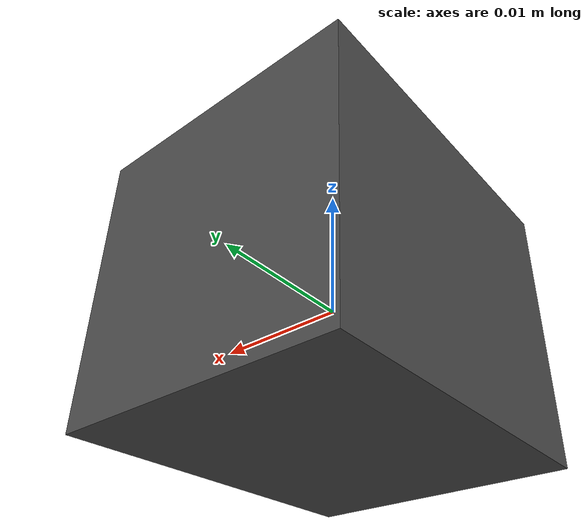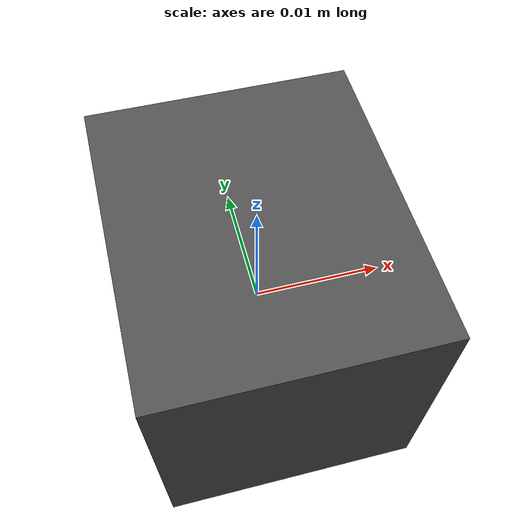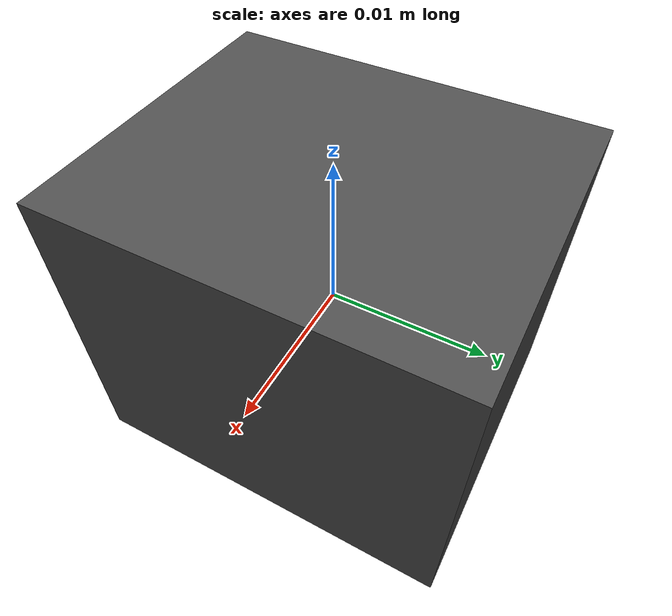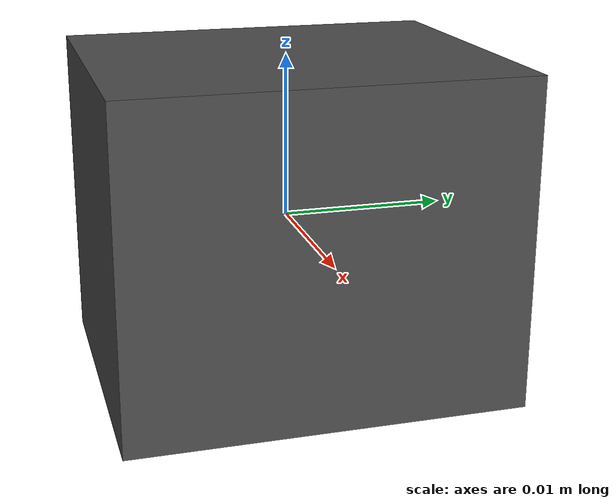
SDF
<?xml version="1.0" ?>
<sdf version="1.5">
  <model name="camera_down">
    <pose>0 0 0.0 0 0 0</pose>
    <link name='link'>
      <inertial>
        <mass>0.01</mass>
        <inertia>
          <ixx>4.15e-06</ixx>
          <ixy>0</ixy>
          <ixz>0</ixz>
          <iyy>2.407e-06</iyy>
          <iyz>0</iyz>
          <izz>2.407e-06</izz>
        </inertia>
      </inertial>
      <self_collide>0</self_collide>
      <kinematic>0</kinematic>
      <sensor name='camera' type='wideanglecamera'>
        <update_rate>30</update_rate>
        <camera name='__default__'>
          <horizontal_fov>1.5</horizontal_fov>
          <image>
            <width>640</width>
            <height>480</height>
          </image>
          <clip>
            <near>0.01</near>
            <far>100</far>
          </clip>
          <noise>
            <type>gaussian</type>
            <mean>0</mean>
            <stddev>0.0001</stddev>
          </noise>
          <lens>
			<env_texture_size>512</env_texture_size>
		  </lens>
        </camera>
        <plugin name='camera_controller' filename='libgazebo_ros_camera.so'>
		  <robotNamespace>scout</robotNamespace>
		  <cameraName>downward</cameraName>
          <imageTopicName>image_raw</imageTopicName>
          <cameraInfoTopicName>camera_info</cameraInfoTopicName>
          <frameName>camera_down::link</frameName>
          <hackBaseline>0.07</hackBaseline>
          <distortionK1>0.0</distortionK1>
          <distortionK2>0.0</distortionK2>
          <distortionK3>0.0</distortionK3>
          <distortionT1>0.0</distortionT1>
          <distortionT2>0.0</distortionT2>
        </plugin>
      </sensor>
      <collision name="collision">
        <pose>0 0 0.0 0 0.0 0</pose>
        <geometry>
          <box>
            <size>0.02 0.024 0.02</size>
          </box>
        </geometry>
      </collision>
      <visual name='visual'>
        <geometry>
          <box>
            <size>0.02 0.024 0.02</size>
          </box>
        </geometry>
        <material>
          <script>
            <name>Gazebo/DarkGrey</name>
            <uri>file://media/materials/scripts/gazebo.material</uri>
          </script>
        </material>
        <pose>0 0 0.0 0 0.0 0</pose>
        <cast_shadows>1</cast_shadows>
        <transparency>0</transparency>
      </visual>
    </link>
  </model>
</sdf>
